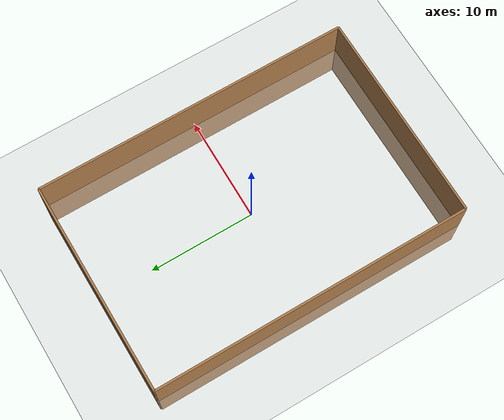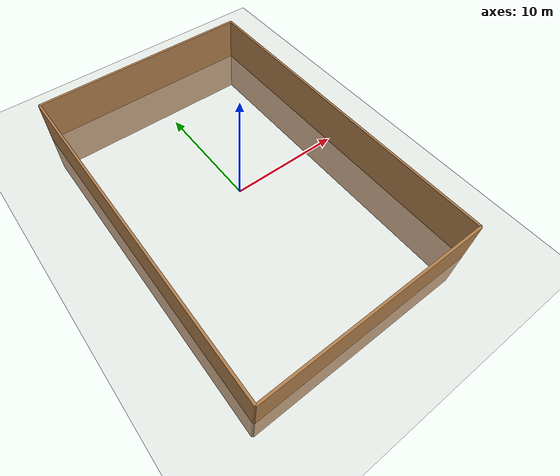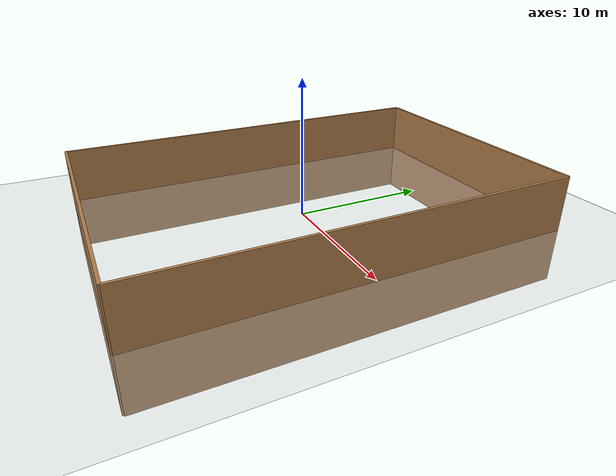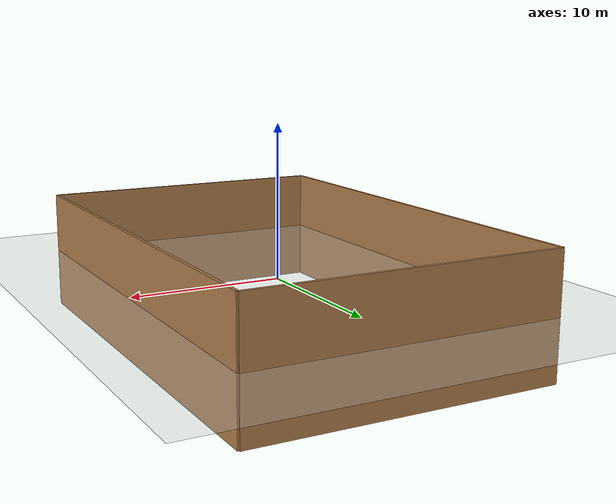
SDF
<sdf version="1.7">
 <world name="default">
  <physics name="default_physics" default="0" type="ode">
   <max_step_size>0.001</max_step_size>
   <real_time_factor>1</real_time_factor>
   <real_time_update_rate>1000</real_time_update_rate>
   <gravity>0 0 -9.8</gravity>
  </physics>
  <light name="sun" type="directional">
   <pose>0 0 1000 0 -0 0</pose>
   <cast_shadows>0</cast_shadows>
   <diffuse>0.8 0.8 0.8 1</diffuse>
   <specular>0.5 0.5 0.5 1</specular>
   <attenuation>
    <range>1000</range>
    <constant>0.9</constant>
    <linear>0.01</linear>
    <quadratic>0.001</quadratic>
   </attenuation>
   <direction>-0.5 0.1 -0.4</direction>
   <spot><inner_angle>0</inner_angle><outer_angle>0</outer_angle><falloff>0</falloff></spot>
  </light>
  <model name="ground_plane">
   <static>1</static>
   <link name="link">
    <collision name="collision">
     <geometry><plane><normal>0 0 1</normal><size>100 100</size></plane></geometry>
     <surface><friction><ode><mu>100</mu><mu2>50</mu2></ode></friction></surface>
    </collision>
    <visual name="visual">
     <cast_shadows>0</cast_shadows>
     <geometry><plane><normal>0 0 1</normal><size>100 100</size></plane></geometry>
     <material>
      <script><uri>file://media/materials/scripts/gazebo.material</uri><name>Gazebo/Grey</name></script>
     </material>
    </visual>
   </link>
  </model>
  <model name="wall">
   <static>1</static>
   <pose>0 15 0 0 -0 0</pose>
   <link name="wall_link">
    <collision name="wall_collision"><geometry><box><size>20 0.2 8</size></box></geometry></collision>
    <visual name="wall_visual">
     <geometry><box><size>20 0.2 8</size></box></geometry>
     <material>
      <script><uri>file://media/materials/scripts/gazebo.material</uri><name>Gazebo/Wood</name></script>
     </material>
    </visual>
   </link>
  </model>
  <model name="wall_2">
   <static>1</static>
   <pose>0 -15 0 0 -0 0</pose>
   <link name="wall_link">
    <collision name="wall_collision"><geometry><box><size>20 0.2 8</size></box></geometry></collision>
    <visual name="wall_visual">
     <geometry><box><size>20 0.2 8</size></box></geometry>
     <material>
      <script><uri>file://media/materials/scripts/gazebo.material</uri><name>Gazebo/Wood</name></script>
     </material>
    </visual>
   </link>
  </model>
  <model name="wall_3">
   <static>1</static>
   <pose>10 0 0 0 -0 0</pose>
   <link name="wall_link">
    <collision name="wall_collision"><geometry><box><size>0.2 30 8</size></box></geometry></collision>
    <visual name="wall_visual">
     <geometry><box><size>0.2 30 8</size></box></geometry>
     <material>
      <script><uri>file://media/materials/scripts/gazebo.material</uri><name>Gazebo/Wood</name></script>
     </material>
    </visual>
   </link>
  </model>
  <model name="wall_4">
   <static>1</static>
   <pose>-10 0 0 0 -0 0</pose>
   <link name="wall_link">
    <collision name="wall_collision"><geometry><box><size>0.2 30 8</size></box></geometry></collision>
    <visual name="wall_visual">
     <geometry><box><size>0.2 30 8</size></box></geometry>
     <material>
      <script><uri>file://media/materials/scripts/gazebo.material</uri><name>Gazebo/Wood</name></script>
     </material>
    </visual>
   </link>
  </model>
  <gravity>0 0 -9.8</gravity>
  <magnetic_field>6e-06 2.3e-05 -4.2e-05</magnetic_field>
  <atmosphere type="adiabatic"/>
  <scene><ambient>0.4 0.4 0.4 1</ambient><background>0.7 0.7 0.7 1</background><shadows>1</shadows></scene>
  <spherical_coordinates>
   <surface_model>EARTH_WGS84</surface_model>
   <latitude_deg>0</latitude_deg>
   <longitude_deg>0</longitude_deg>
   <elevation>0</elevation>
   <heading_deg>0</heading_deg>
  </spherical_coordinates>
 </world>
</sdf>
